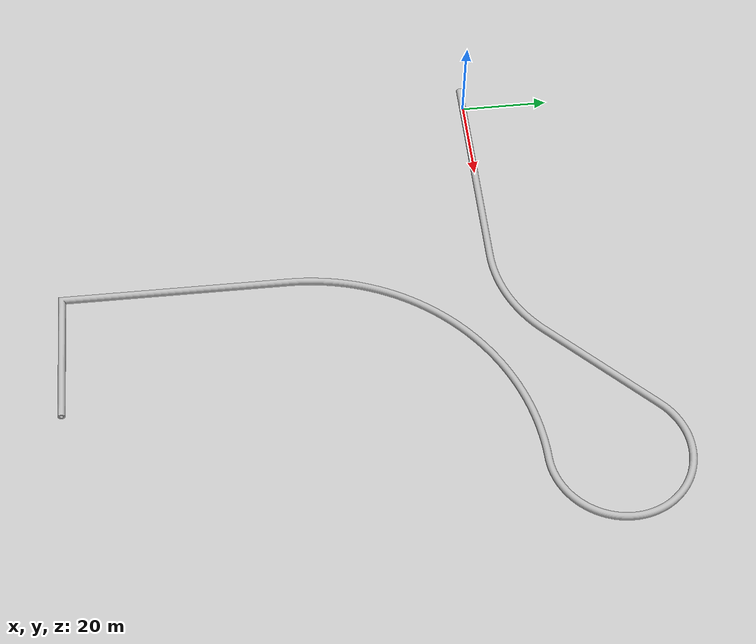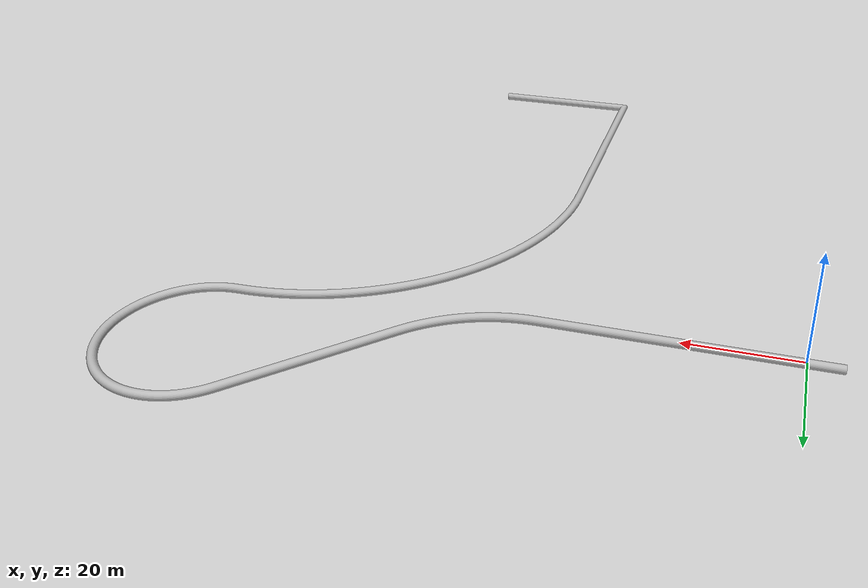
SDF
<?xml version="1.0"?>
<sdf version="1.5">
  <world name="default">
    <include>
      <uri>model://sun</uri>
    </include>
    <include>
      <uri>model://sewage_pipe_800mm</uri>
      <static>true</static>
      <pose>-6 0 -0.1 0 0 0</pose>
    </include>

  </world>
</sdf>

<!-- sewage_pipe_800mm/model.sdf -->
<sdf version="1.6">
    <model name="sewage_pipe_800mm">
      <pose>0 0 0 0 0 0</pose>
      <static>true</static>
      <link name="sewage_pipe_link">
        <collision name="collision_pipe">
          <geometry>
            <mesh>
                <uri>model://sewage_pipe_800mm/meshes/sewage_pipe_800mm.stl</uri>
            </mesh>
          </geometry>
          <surface>
            <friction>
              <ode>
                <mu>100</mu>
                <mu2>50</mu2>
              </ode>
            </friction>
          </surface>
        </collision>
        <visual name="visual_pipe">
          <geometry>
            <mesh>
                <uri>model://sewage_pipe_800mm/meshes/sewage_pipe_800mm.dae</uri>
            </mesh>
          </geometry>
          <material>
          <script>
            <uri>model://sewage_pipe_800mm/materials/scripts</uri>
            <uri>model://sewage_pipe_800mm/materials/textures</uri>
            <name>pipe/concrete</name>
          </script>
        </material>
        </visual>
      </link>
    </model>
</sdf>
